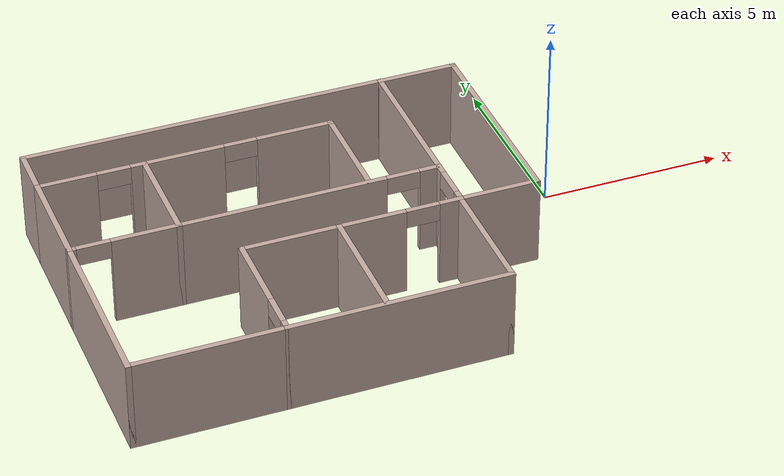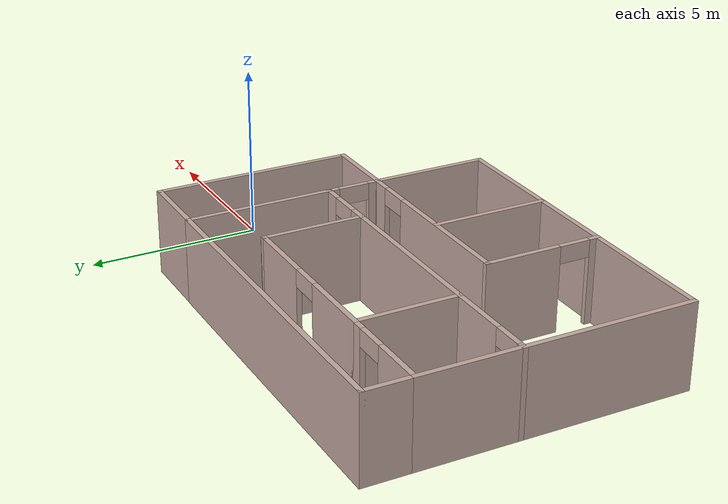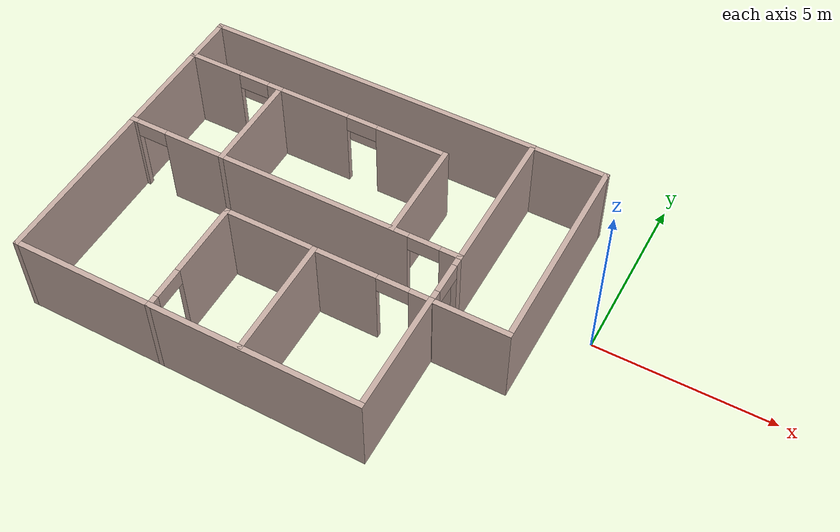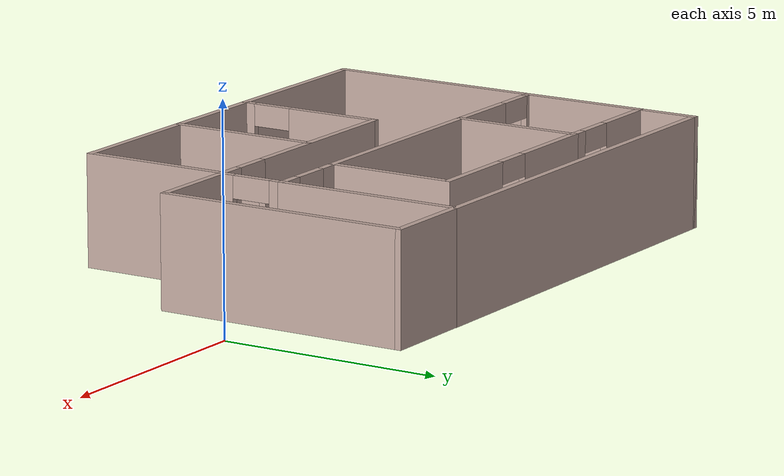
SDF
<?xml version='1.0'?>
<sdf version='1.6'>
  <model name='Building1'>
    <pose frame=''>-6.68249 -1.17455 0 0 -0 0</pose>
    <link name='Wall_0'>
      <pose frame=''>-1.67871 0.325 0 0 -0 3.14159</pose>
      <visual name='Wall_0_Visual_0'>
        <pose frame=''>-4.70018 0 1.25 0 -0 0</pose>
        <geometry>
          <box>
            <size>0.607207 0.15 2.5</size>
          </box>
        </geometry>
        <material>
          <script>
            <uri>file://media/materials/scripts/gazebo.material</uri>
            <name>Gazebo/Grey</name>
          </script>
          <ambient>0.760784 0.662745 0.627451 1</ambient>
        </material>
        <meta>
          <layer>0</layer>
        </meta>
      </visual>
      <collision name='Wall_0_Collision_0'>
        <geometry>
          <box>
            <size>0.607207 0.15 2.5</size>
          </box>
        </geometry>
        <pose frame=''>-4.70018 0 1.25 0 -0 0</pose>
      </collision>
      <visual name='Wall_0_Visual_1'>
        <pose frame=''>0.181804 0 1.25 0 -0 0</pose>
        <geometry>
          <box>
            <size>7.35676 0.15 2.5</size>
          </box>
        </geometry>
        <material>
          <script>
            <uri>file://media/materials/scripts/gazebo.material</uri>
            <name>Gazebo/Grey</name>
          </script>
          <ambient>0.760784 0.662745 0.627451 1</ambient>
        </material>
        <meta>
          <layer>0</layer>
        </meta>
      </visual>
      <collision name='Wall_0_Collision_1'>
        <geometry>
          <box>
            <size>7.35676 0.15 2.5</size>
          </box>
        </geometry>
        <pose frame=''>0.181804 0 1.25 0 -0 0</pose>
      </collision>
      <visual name='Wall_0_Visual_2'>
        <pose frame=''>4.88198 0 1.25 0 -0 0</pose>
        <geometry>
          <box>
            <size>0.243598 0.15 2.5</size>
          </box>
        </geometry>
        <material>
          <script>
            <uri>file://media/materials/scripts/gazebo.material</uri>
            <name>Gazebo/Grey</name>
          </script>
          <ambient>0.760784 0.662745 0.627451 1</ambient>
        </material>
        <meta>
          <layer>0</layer>
        </meta>
      </visual>
      <collision name='Wall_0_Collision_2'>
        <geometry>
          <box>
            <size>0.243598 0.15 2.5</size>
          </box>
        </geometry>
        <pose frame=''>4.88198 0 1.25 0 -0 0</pose>
      </collision>
      <visual name='Wall_0_Visual_3'>
        <pose frame=''>-3.94657 0 2.25 0 -0 0</pose>
        <geometry>
          <box>
            <size>0.9 0.15 0.5</size>
          </box>
        </geometry>
        <material>
          <script>
            <uri>file://media/materials/scripts/gazebo.material</uri>
            <name>Gazebo/Grey</name>
          </script>
          <ambient>0.760784 0.662745 0.627451 1</ambient>
        </material>
        <meta>
          <layer>0</layer>
        </meta>
      </visual>
      <collision name='Wall_0_Collision_3'>
        <geometry>
          <box>
            <size>0.9 0.15 0.5</size>
          </box>
        </geometry>
        <pose frame=''>-3.94657 0 2.25 0 -0 0</pose>
      </collision>
      <visual name='Wall_0_Visual_4'>
        <pose frame=''>4.31018 0 2.25 0 -0 0</pose>
        <geometry>
          <box>
            <size>0.9 0.15 0.5</size>
          </box>
        </geometry>
        <material>
          <script>
            <uri>file://media/materials/scripts/gazebo.material</uri>
            <name>Gazebo/Grey</name>
          </script>
          <ambient>0.760784 0.662745 0.627451 1</ambient>
        </material>
        <meta>
          <layer>0</layer>
        </meta>
      </visual>
      <collision name='Wall_0_Collision_4'>
        <geometry>
          <box>
            <size>0.9 0.15 0.5</size>
          </box>
        </geometry>
        <pose frame=''>4.31018 0 2.25 0 -0 0</pose>
      </collision>
    </link>
    <link name='Wall_11'>
      <collision name='Wall_11_Collision'>
        <geometry>
          <box>
            <size>3 0.15 2.5</size>
          </box>
        </geometry>
        <pose frame=''>0 0 1.25 0 -0 0</pose>
      </collision>
      <visual name='Wall_11_Visual'>
        <pose frame=''>0 0 1.25 0 -0 0</pose>
        <geometry>
          <box>
            <size>3 0.15 2.5</size>
          </box>
        </geometry>
        <material>
          <script>
            <uri>file://media/materials/scripts/gazebo.material</uri>
            <name>Gazebo/Grey</name>
          </script>
          <ambient>0.760784 0.662745 0.627451 1</ambient>
        </material>
        <meta>
          <layer>0</layer>
        </meta>
      </visual>
      <pose frame=''>-6.60749 1.75 0 0 -0 1.5708</pose>
    </link>
    <link name='Wall_13'>
      <pose frame=''>-5.18249 3.175 0 0 -0 0</pose>
      <visual name='Wall_13_Visual_0'>
        <pose frame=''>-0.678273 0 1.25 0 -0 0</pose>
        <geometry>
          <box>
            <size>1.64345 0.15 2.5</size>
          </box>
        </geometry>
        <material>
          <script>
            <uri>file://media/materials/scripts/gazebo.material</uri>
            <name>Gazebo/Grey</name>
          </script>
          <ambient>0.760784 0.662745 0.627451 1</ambient>
        </material>
        <meta>
          <layer>0</layer>
        </meta>
      </visual>
      <collision name='Wall_13_Collision_0'>
        <geometry>
          <box>
            <size>1.64345 0.15 2.5</size>
          </box>
        </geometry>
        <pose frame=''>-0.678273 0 1.25 0 -0 0</pose>
      </collision>
      <visual name='Wall_13_Visual_1'>
        <pose frame=''>1.27173 0 1.25 0 -0 0</pose>
        <geometry>
          <box>
            <size>0.456546 0.15 2.5</size>
          </box>
        </geometry>
        <material>
          <script>
            <uri>file://media/materials/scripts/gazebo.material</uri>
            <name>Gazebo/Grey</name>
          </script>
          <ambient>0.760784 0.662745 0.627451 1</ambient>
        </material>
        <meta>
          <layer>0</layer>
        </meta>
      </visual>
      <collision name='Wall_13_Collision_1'>
        <geometry>
          <box>
            <size>0.456546 0.15 2.5</size>
          </box>
        </geometry>
        <pose frame=''>1.27173 0 1.25 0 -0 0</pose>
      </collision>
      <visual name='Wall_13_Visual_2'>
        <pose frame=''>0.593454 0 2.25 0 -0 0</pose>
        <geometry>
          <box>
            <size>0.9 0.15 0.5</size>
          </box>
        </geometry>
        <material>
          <script>
            <uri>file://media/materials/scripts/gazebo.material</uri>
            <name>Gazebo/Grey</name>
          </script>
          <ambient>0.760784 0.662745 0.627451 1</ambient>
        </material>
        <meta>
          <layer>0</layer>
        </meta>
      </visual>
      <collision name='Wall_13_Collision_2'>
        <geometry>
          <box>
            <size>0.9 0.15 0.5</size>
          </box>
        </geometry>
        <pose frame=''>0.593454 0 2.25 0 -0 0</pose>
      </collision>
    </link>
    <link name='Wall_14'>
      <collision name='Wall_14_Collision'>
        <geometry>
          <box>
            <size>3 0.15 2.5</size>
          </box>
        </geometry>
        <pose frame=''>0 0 1.25 0 -0 0</pose>
      </collision>
      <visual name='Wall_14_Visual'>
        <pose frame=''>0 0 1.25 0 -0 0</pose>
        <geometry>
          <box>
            <size>3 0.15 2.5</size>
          </box>
        </geometry>
        <material>
          <script>
            <uri>file://media/materials/scripts/gazebo.material</uri>
            <name>Gazebo/Grey</name>
          </script>
          <ambient>0.760784 0.662745 0.627451 1</ambient>
        </material>
        <meta>
          <layer>0</layer>
        </meta>
      </visual>
      <pose frame=''>-3.75749 1.75 0 0 -0 -1.5708</pose>
    </link>
    <link name='Wall_17'>
      <collision name='Wall_17_Collision'>
        <geometry>
          <box>
            <size>4.25 0.15 2.5</size>
          </box>
        </geometry>
        <pose frame=''>0 0 1.25 0 -0 0</pose>
      </collision>
      <visual name='Wall_17_Visual'>
        <pose frame=''>0 0 1.25 0 -0 0</pose>
        <geometry>
          <box>
            <size>4.25 0.15 2.5</size>
          </box>
        </geometry>
        <material>
          <script>
            <uri>file://media/materials/scripts/gazebo.material</uri>
            <name>Gazebo/Grey</name>
          </script>
          <ambient>0.760784 0.662745 0.627451 1</ambient>
        </material>
        <meta>
          <layer>0</layer>
        </meta>
      </visual>
      <pose frame=''>3.25763 2.375 0 0 -0 1.5708</pose>
    </link>
    <link name='Wall_2'>
      <pose frame=''>3.25763 -0.426044 0 0 -0 -1.5708</pose>
      <visual name='Wall_2_Visual_0'>
        <pose frame=''>-0.641987 0 1.25 0 -0 0</pose>
        <geometry>
          <box>
            <size>0.36819 0.15 2.5</size>
          </box>
        </geometry>
        <material>
          <script>
            <uri>file://media/materials/scripts/gazebo.material</uri>
            <name>Gazebo/Grey</name>
          </script>
          <ambient>0.760784 0.662745 0.627451 1</ambient>
        </material>
        <meta>
          <layer>0</layer>
        </meta>
      </visual>
      <collision name='Wall_2_Collision_0'>
        <geometry>
          <box>
            <size>0.36819 0.15 2.5</size>
          </box>
        </geometry>
        <pose frame=''>-0.641987 0 1.25 0 -0 0</pose>
      </collision>
      <visual name='Wall_2_Visual_1'>
        <pose frame=''>0.634095 0 1.25 0 -0 0</pose>
        <geometry>
          <box>
            <size>0.383974 0.15 2.5</size>
          </box>
        </geometry>
        <material>
          <script>
            <uri>file://media/materials/scripts/gazebo.material</uri>
            <name>Gazebo/Grey</name>
          </script>
          <ambient>0.760784 0.662745 0.627451 1</ambient>
        </material>
        <meta>
          <layer>0</layer>
        </meta>
      </visual>
      <collision name='Wall_2_Collision_1'>
        <geometry>
          <box>
            <size>0.383974 0.15 2.5</size>
          </box>
        </geometry>
        <pose frame=''>0.634095 0 1.25 0 -0 0</pose>
      </collision>
      <visual name='Wall_2_Visual_2'>
        <pose frame=''>-0.007892 0 2.25 0 -0 0</pose>
        <geometry>
          <box>
            <size>0.9 0.15 0.5</size>
          </box>
        </geometry>
        <material>
          <script>
            <uri>file://media/materials/scripts/gazebo.material</uri>
            <name>Gazebo/Grey</name>
          </script>
          <ambient>0.760784 0.662745 0.627451 1</ambient>
        </material>
        <meta>
          <layer>0</layer>
        </meta>
      </visual>
      <collision name='Wall_2_Collision_2'>
        <geometry>
          <box>
            <size>0.9 0.15 0.5</size>
          </box>
        </geometry>
        <pose frame=''>-0.007892 0 2.25 0 -0 0</pose>
      </collision>
    </link>
    <link name='Wall_21'>
      <collision name='Wall_21_Collision'>
        <geometry>
          <box>
            <size>6 0.15 2.5</size>
          </box>
        </geometry>
        <pose frame=''>0 0 1.25 0 -0 0</pose>
      </collision>
      <visual name='Wall_21_Visual'>
        <pose frame=''>0 0 1.25 0 -0 0</pose>
        <geometry>
          <box>
            <size>6 0.15 2.5</size>
          </box>
        </geometry>
        <material>
          <script>
            <uri>file://media/materials/scripts/gazebo.material</uri>
            <name>Gazebo/Grey</name>
          </script>
          <ambient>0.760784 0.662745 0.627451 1</ambient>
        </material>
        <meta>
          <layer>0</layer>
        </meta>
      </visual>
      <pose frame=''>0.319599 -4.525 0 0 -0 0</pose>
    </link>
    <link name='Wall_22'>
      <collision name='Wall_22_Collision'>
        <geometry>
          <box>
            <size>3.5 0.15 2.5</size>
          </box>
        </geometry>
        <pose frame=''>0 0 1.25 0 -0 0</pose>
      </collision>
      <visual name='Wall_22_Visual'>
        <pose frame=''>0 0 1.25 0 -0 0</pose>
        <geometry>
          <box>
            <size>3.5 0.15 2.5</size>
          </box>
        </geometry>
        <material>
          <script>
            <uri>file://media/materials/scripts/gazebo.material</uri>
            <name>Gazebo/Grey</name>
          </script>
          <ambient>0.760784 0.662745 0.627451 1</ambient>
        </material>
        <meta>
          <layer>0</layer>
        </meta>
      </visual>
      <pose frame=''>3.2446 -2.85 0 0 -0 1.5708</pose>
    </link>
    <link name='Wall_27'>
      <collision name='Wall_27_Collision'>
        <geometry>
          <box>
            <size>3.45 0.15 2.5</size>
          </box>
        </geometry>
        <pose frame=''>0 0 1.25 0 -0 0</pose>
      </collision>
      <visual name='Wall_27_Visual'>
        <pose frame=''>0 0 1.25 0 -0 0</pose>
        <geometry>
          <box>
            <size>3.45 0.15 2.5</size>
          </box>
        </geometry>
        <material>
          <script>
            <uri>file://media/materials/scripts/gazebo.material</uri>
            <name>Gazebo/Grey</name>
          </script>
          <ambient>0.760784 0.662745 0.627451 1</ambient>
        </material>
        <meta>
          <layer>0</layer>
        </meta>
      </visual>
      <pose frame=''>-0.028511 -2.83674 0 0 -0 -1.5708</pose>
    </link>
    <link name='Wall_33'>
      <collision name='Wall_33_Collision'>
        <geometry>
          <box>
            <size>1.5 0.15 2.5</size>
          </box>
        </geometry>
        <pose frame=''>0 0 1.25 0 -0 0</pose>
      </collision>
      <visual name='Wall_33_Visual'>
        <pose frame=''>0 0 1.25 0 -0 0</pose>
        <geometry>
          <box>
            <size>1.5 0.15 2.5</size>
          </box>
        </geometry>
        <material>
          <script>
            <uri>file://media/materials/scripts/gazebo.material</uri>
            <name>Gazebo/Grey</name>
          </script>
          <ambient>0.760784 0.662745 0.627451 1</ambient>
        </material>
        <meta>
          <layer>0</layer>
        </meta>
      </visual>
      <pose frame=''>-6.60749 3.85 0 0 -0 1.5708</pose>
    </link>
    <link name='Wall_34'>
      <collision name='Wall_34_Collision'>
        <geometry>
          <box>
            <size>10 0.15 2.5</size>
          </box>
        </geometry>
        <pose frame=''>0 0 1.25 0 -0 0</pose>
      </collision>
      <visual name='Wall_34_Visual'>
        <pose frame=''>0 0 1.25 0 -0 0</pose>
        <geometry>
          <box>
            <size>10 0.15 2.5</size>
          </box>
        </geometry>
        <material>
          <script>
            <uri>file://media/materials/scripts/gazebo.material</uri>
            <name>Gazebo/Grey</name>
          </script>
          <ambient>0.760784 0.662745 0.627451 1</ambient>
        </material>
        <meta>
          <layer>0</layer>
        </meta>
      </visual>
      <pose frame=''>-1.68249 4.525 0 0 -0 0</pose>
    </link>
    <link name='Wall_36'>
      <pose frame=''>-1.20749 3.175 0 0 -0 0</pose>
      <visual name='Wall_36_Visual_0'>
        <pose frame=''>-1.51256 0 1.25 0 -0 0</pose>
        <geometry>
          <box>
            <size>2.22488 0.15 2.5</size>
          </box>
        </geometry>
        <material>
          <script>
            <uri>file://media/materials/scripts/gazebo.material</uri>
            <name>Gazebo/Grey</name>
          </script>
          <ambient>0.760784 0.662745 0.627451 1</ambient>
        </material>
        <meta>
          <layer>0</layer>
        </meta>
      </visual>
      <collision name='Wall_36_Collision_0'>
        <geometry>
          <box>
            <size>2.22488 0.15 2.5</size>
          </box>
        </geometry>
        <pose frame=''>-1.51256 0 1.25 0 -0 0</pose>
      </collision>
      <visual name='Wall_36_Visual_1'>
        <pose frame=''>1.56244 0 1.25 0 -0 0</pose>
        <geometry>
          <box>
            <size>2.12512 0.15 2.5</size>
          </box>
        </geometry>
        <material>
          <script>
            <uri>file://media/materials/scripts/gazebo.material</uri>
            <name>Gazebo/Grey</name>
          </script>
          <ambient>0.760784 0.662745 0.627451 1</ambient>
        </material>
        <meta>
          <layer>0</layer>
        </meta>
      </visual>
      <collision name='Wall_36_Collision_1'>
        <geometry>
          <box>
            <size>2.12512 0.15 2.5</size>
          </box>
        </geometry>
        <pose frame=''>1.56244 0 1.25 0 -0 0</pose>
      </collision>
      <visual name='Wall_36_Visual_2'>
        <pose frame=''>0.049881 0 2.25 0 -0 0</pose>
        <geometry>
          <box>
            <size>0.9 0.15 0.5</size>
          </box>
        </geometry>
        <material>
          <script>
            <uri>file://media/materials/scripts/gazebo.material</uri>
            <name>Gazebo/Grey</name>
          </script>
          <ambient>0.760784 0.662745 0.627451 1</ambient>
        </material>
        <meta>
          <layer>0</layer>
        </meta>
      </visual>
      <collision name='Wall_36_Collision_2'>
        <geometry>
          <box>
            <size>0.9 0.15 0.5</size>
          </box>
        </geometry>
        <pose frame=''>0.049881 0 2.25 0 -0 0</pose>
      </collision>
    </link>
    <link name='Wall_37'>
      <collision name='Wall_37_Collision'>
        <geometry>
          <box>
            <size>3 0.15 2.5</size>
          </box>
        </geometry>
        <pose frame=''>0 0 1.25 0 -0 0</pose>
      </collision>
      <visual name='Wall_37_Visual'>
        <pose frame=''>0 0 1.25 0 -0 0</pose>
        <geometry>
          <box>
            <size>3 0.15 2.5</size>
          </box>
        </geometry>
        <material>
          <script>
            <uri>file://media/materials/scripts/gazebo.material</uri>
            <name>Gazebo/Grey</name>
          </script>
          <ambient>0.760784 0.662745 0.627451 1</ambient>
        </material>
        <meta>
          <layer>0</layer>
        </meta>
      </visual>
      <pose frame=''>1.34251 1.75 0 0 -0 -1.5708</pose>
    </link>
    <link name='Wall_39'>
      <collision name='Wall_39_Collision'>
        <geometry>
          <box>
            <size>2.25 0.15 2.5</size>
          </box>
        </geometry>
        <pose frame=''>0 0 1.25 0 -0 0</pose>
      </collision>
      <visual name='Wall_39_Visual'>
        <pose frame=''>0 0 1.25 0 -0 0</pose>
        <geometry>
          <box>
            <size>2.25 0.15 2.5</size>
          </box>
        </geometry>
        <material>
          <script>
            <uri>file://media/materials/scripts/gazebo.material</uri>
            <name>Gazebo/Grey</name>
          </script>
          <ambient>0.760784 0.662745 0.627451 1</ambient>
        </material>
        <meta>
          <layer>0</layer>
        </meta>
      </visual>
      <pose frame=''>4.30028 -1.17727 0 0 -0 -0.000175</pose>
    </link>
    <link name='Wall_40'>
      <collision name='Wall_40_Collision'>
        <geometry>
          <box>
            <size>5.84195 0.15 2.5</size>
          </box>
        </geometry>
        <pose frame=''>0 0 1.25 0 -0 0</pose>
      </collision>
      <visual name='Wall_40_Visual'>
        <pose frame=''>0 0 1.25 0 -0 0</pose>
        <geometry>
          <box>
            <size>5.84195 0.15 2.5</size>
          </box>
        </geometry>
        <material>
          <script>
            <uri>file://media/materials/scripts/gazebo.material</uri>
            <name>Gazebo/Grey</name>
          </script>
          <ambient>0.760784 0.662745 0.627451 1</ambient>
        </material>
        <meta>
          <layer>0</layer>
        </meta>
      </visual>
      <pose frame=''>5.35049 1.66855 0 0 -0 1.5708</pose>
    </link>
    <link name='Wall_41'>
      <collision name='Wall_41_Collision'>
        <geometry>
          <box>
            <size>2.24393 0.15 2.5</size>
          </box>
        </geometry>
        <pose frame=''>0 0 1.25 0 -0 0</pose>
      </collision>
      <visual name='Wall_41_Visual'>
        <pose frame=''>0 0 1.25 0 -0 0</pose>
        <geometry>
          <box>
            <size>2.24393 0.15 2.5</size>
          </box>
        </geometry>
        <material>
          <script>
            <uri>file://media/materials/scripts/gazebo.material</uri>
            <name>Gazebo/Grey</name>
          </script>
          <ambient>0.760784 0.662745 0.627451 1</ambient>
        </material>
        <meta>
          <layer>0</layer>
        </meta>
      </visual>
      <pose frame=''>4.30352 4.51457 0 0 -0 3.14156</pose>
    </link>
    <link name='Wall_5'>
      <collision name='Wall_5_Collision'>
        <geometry>
          <box>
            <size>5 0.15 2.5</size>
          </box>
        </geometry>
        <pose frame=''>0 0 1.25 0 -0 0</pose>
      </collision>
      <visual name='Wall_5_Visual'>
        <pose frame=''>0 0 1.25 0 -0 0</pose>
        <geometry>
          <box>
            <size>5 0.15 2.5</size>
          </box>
        </geometry>
        <material>
          <script>
            <uri>file://media/materials/scripts/gazebo.material</uri>
            <name>Gazebo/Grey</name>
          </script>
          <ambient>0.760784 0.662745 0.627451 1</ambient>
        </material>
        <meta>
          <layer>0</layer>
        </meta>
      </visual>
      <pose frame=''>-6.60749 -2.1 0 0 -0 -1.5708</pose>
    </link>
    <link name='Wall_6'>
      <collision name='Wall_6_Collision'>
        <geometry>
          <box>
            <size>4.13688 0.15 2.5</size>
          </box>
        </geometry>
        <pose frame=''>0 0 1.25 0 -0 0</pose>
      </collision>
      <visual name='Wall_6_Visual'>
        <pose frame=''>0 0 1.25 0 -0 0</pose>
        <geometry>
          <box>
            <size>4.13688 0.15 2.5</size>
          </box>
        </geometry>
        <material>
          <script>
            <uri>file://media/materials/scripts/gazebo.material</uri>
            <name>Gazebo/Grey</name>
          </script>
          <ambient>0.760784 0.662745 0.627451 1</ambient>
        </material>
        <meta>
          <layer>0</layer>
        </meta>
      </visual>
      <pose frame=''>-4.61405 -4.525 0 0 -0 0</pose>
    </link>
    <link name='Wall_7'>
      <pose frame=''>-2.6054 -2.85 0 0 -0 1.5708</pose>
      <visual name='Wall_7_Visual_0'>
        <pose frame=''>-1.57223 0 1.25 0 -0 0</pose>
        <geometry>
          <box>
            <size>0.355544 0.15 2.5</size>
          </box>
        </geometry>
        <material>
          <script>
            <uri>file://media/materials/scripts/gazebo.material</uri>
            <name>Gazebo/Grey</name>
          </script>
          <ambient>0.760784 0.662745 0.627451 1</ambient>
        </material>
        <meta>
          <layer>0</layer>
        </meta>
      </visual>
      <collision name='Wall_7_Collision_0'>
        <geometry>
          <box>
            <size>0.355544 0.15 2.5</size>
          </box>
        </geometry>
        <pose frame=''>-1.57223 0 1.25 0 -0 0</pose>
      </collision>
      <visual name='Wall_7_Visual_1'>
        <pose frame=''>0.627772 0 1.25 0 -0 0</pose>
        <geometry>
          <box>
            <size>2.24446 0.15 2.5</size>
          </box>
        </geometry>
        <material>
          <script>
            <uri>file://media/materials/scripts/gazebo.material</uri>
            <name>Gazebo/Grey</name>
          </script>
          <ambient>0.760784 0.662745 0.627451 1</ambient>
        </material>
        <meta>
          <layer>0</layer>
        </meta>
      </visual>
      <collision name='Wall_7_Collision_1'>
        <geometry>
          <box>
            <size>2.24446 0.15 2.5</size>
          </box>
        </geometry>
        <pose frame=''>0.627772 0 1.25 0 -0 0</pose>
      </collision>
      <visual name='Wall_7_Visual_2'>
        <pose frame=''>-0.944456 0 2.25 0 -0 0</pose>
        <geometry>
          <box>
            <size>0.9 0.15 0.5</size>
          </box>
        </geometry>
        <material>
          <script>
            <uri>file://media/materials/scripts/gazebo.material</uri>
            <name>Gazebo/Grey</name>
          </script>
          <ambient>0.760784 0.662745 0.627451 1</ambient>
        </material>
        <meta>
          <layer>0</layer>
        </meta>
      </visual>
      <collision name='Wall_7_Collision_2'>
        <geometry>
          <box>
            <size>0.9 0.15 0.5</size>
          </box>
        </geometry>
        <pose frame=''>-0.944456 0 2.25 0 -0 0</pose>
      </collision>
    </link>
    <link name='Wall_9'>
      <pose frame=''>0.328897 -1.17709 0 0 -0 3.14159</pose>
      <visual name='Wall_9_Visual_0'>
        <pose frame=''>-2.66597 0 1.25 0 -0 0</pose>
        <geometry>
          <box>
            <size>0.660407 0.15 2.5</size>
          </box>
        </geometry>
        <material>
          <script>
            <uri>file://media/materials/scripts/gazebo.material</uri>
            <name>Gazebo/Grey</name>
          </script>
          <ambient>0.760784 0.662745 0.627451 1</ambient>
        </material>
        <meta>
          <layer>0</layer>
        </meta>
      </visual>
      <collision name='Wall_9_Collision_0'>
        <geometry>
          <box>
            <size>0.660407 0.15 2.5</size>
          </box>
        </geometry>
        <pose frame=''>-2.66597 0 1.25 0 -0 0</pose>
      </collision>
      <visual name='Wall_9_Visual_1'>
        <pose frame=''>0.780204 0 1.25 0 -0 0</pose>
        <geometry>
          <box>
            <size>4.43194 0.15 2.5</size>
          </box>
        </geometry>
        <material>
          <script>
            <uri>file://media/materials/scripts/gazebo.material</uri>
            <name>Gazebo/Grey</name>
          </script>
          <ambient>0.760784 0.662745 0.627451 1</ambient>
        </material>
        <meta>
          <layer>0</layer>
        </meta>
      </visual>
      <collision name='Wall_9_Collision_1'>
        <geometry>
          <box>
            <size>4.43194 0.15 2.5</size>
          </box>
        </geometry>
        <pose frame=''>0.780204 0 1.25 0 -0 0</pose>
      </collision>
      <visual name='Wall_9_Visual_2'>
        <pose frame=''>-1.88577 0 2.25 0 -0 0</pose>
        <geometry>
          <box>
            <size>0.9 0.15 0.5</size>
          </box>
        </geometry>
        <material>
          <script>
            <uri>file://media/materials/scripts/gazebo.material</uri>
            <name>Gazebo/Grey</name>
          </script>
          <ambient>0.760784 0.662745 0.627451 1</ambient>
        </material>
        <meta>
          <layer>0</layer>
        </meta>
      </visual>
      <collision name='Wall_9_Collision_2'>
        <geometry>
          <box>
            <size>0.9 0.15 0.5</size>
          </box>
        </geometry>
        <pose frame=''>-1.88577 0 2.25 0 -0 0</pose>
      </collision>
    </link>
    <static>1</static>
  </model>
</sdf>
